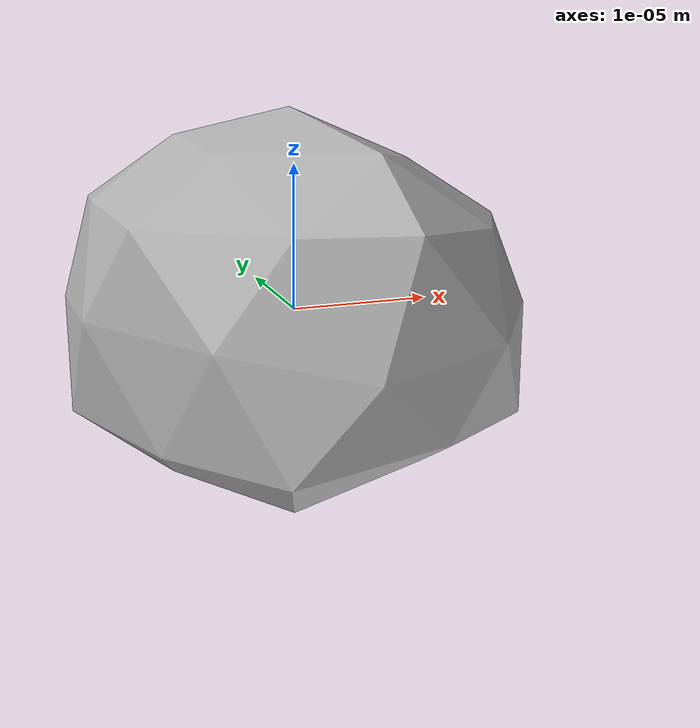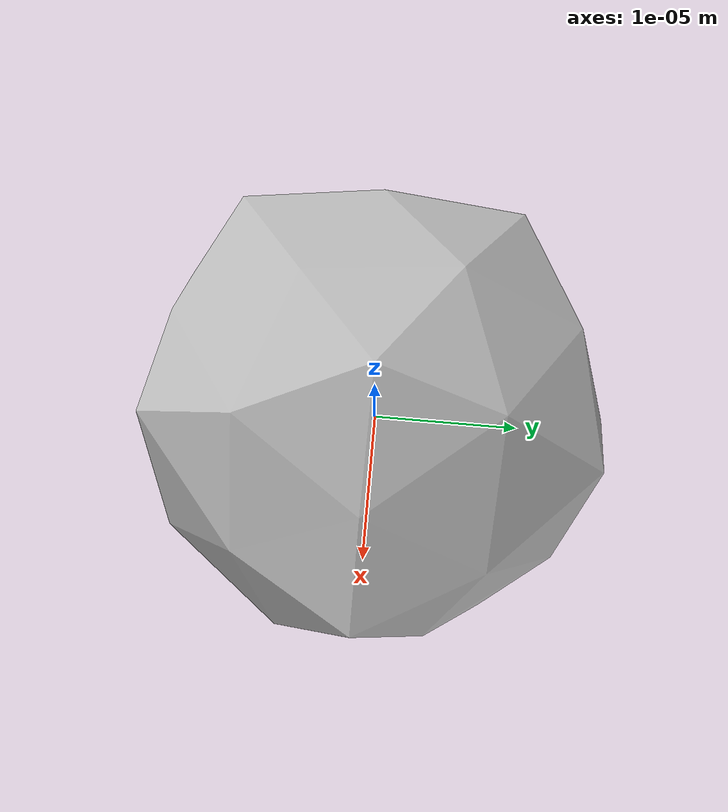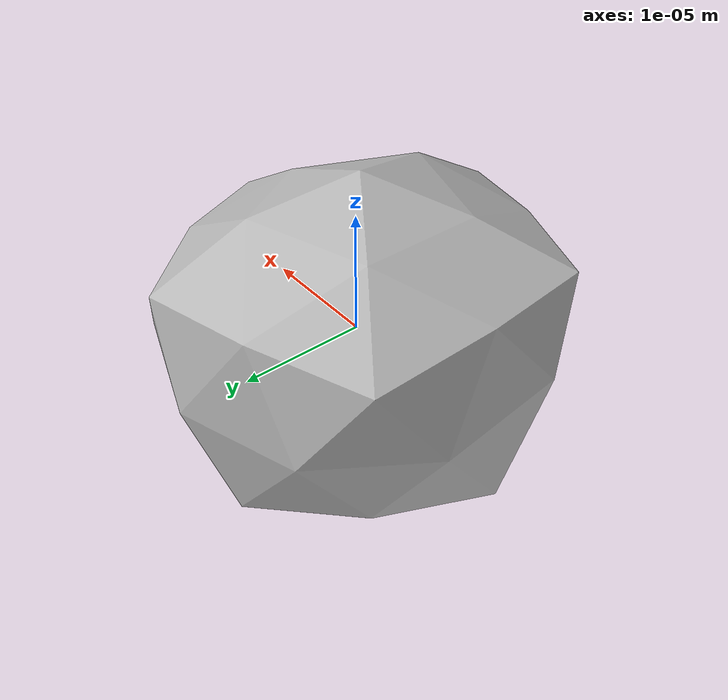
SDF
<?xml version="1.0" ?>
<sdf version="1.6">
  <model name="stone">
    <pose>0 0 0 0 0 0</pose>
    <static>true</static>
    <link name="body">
      <visual name="visual">
        <geometry>
          <mesh>
            <uri>model://stone/meshes/stone.dae</uri>
            <scale>0.0035 0.0035 0.0035</scale>
          </mesh>
        </geometry>
      </visual>
      <collision name="collision">
        <geometry>
          <mesh>
            <uri>model://stone/meshes/stone.dae</uri>
            <scale>0.0035 0.0035 0.0035</scale>
          </mesh>
        </geometry>
      </collision>
    </link>
  </model>
</sdf>
